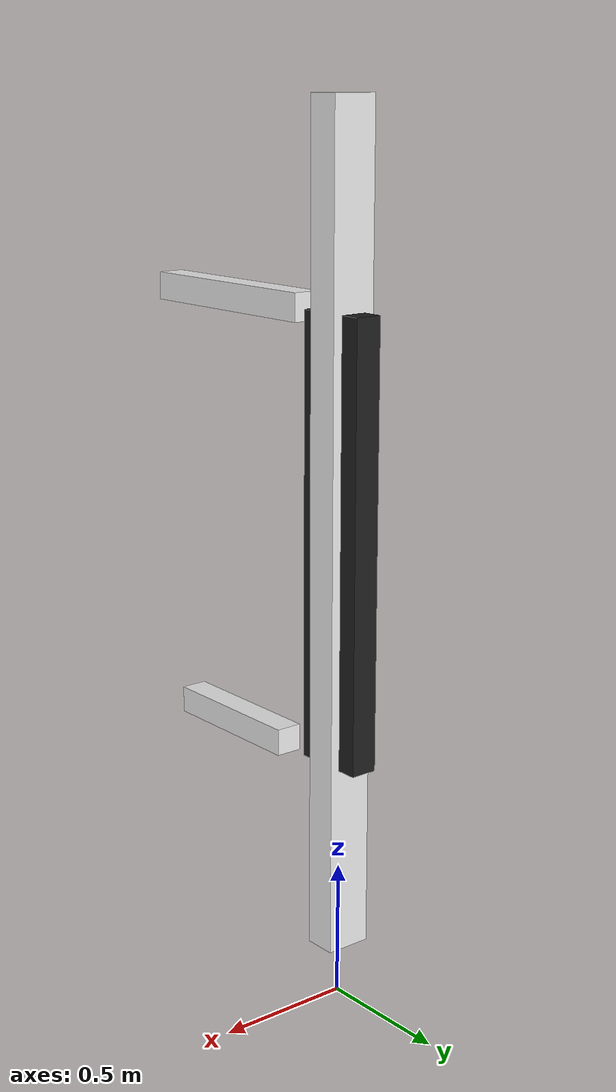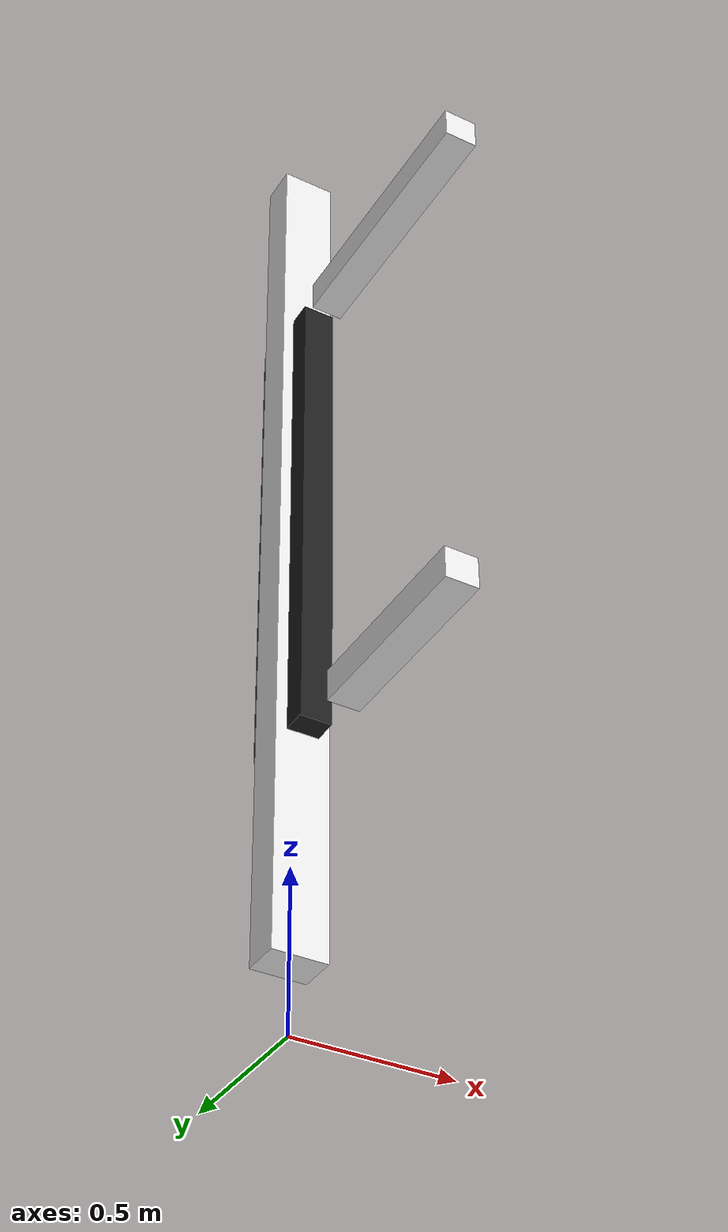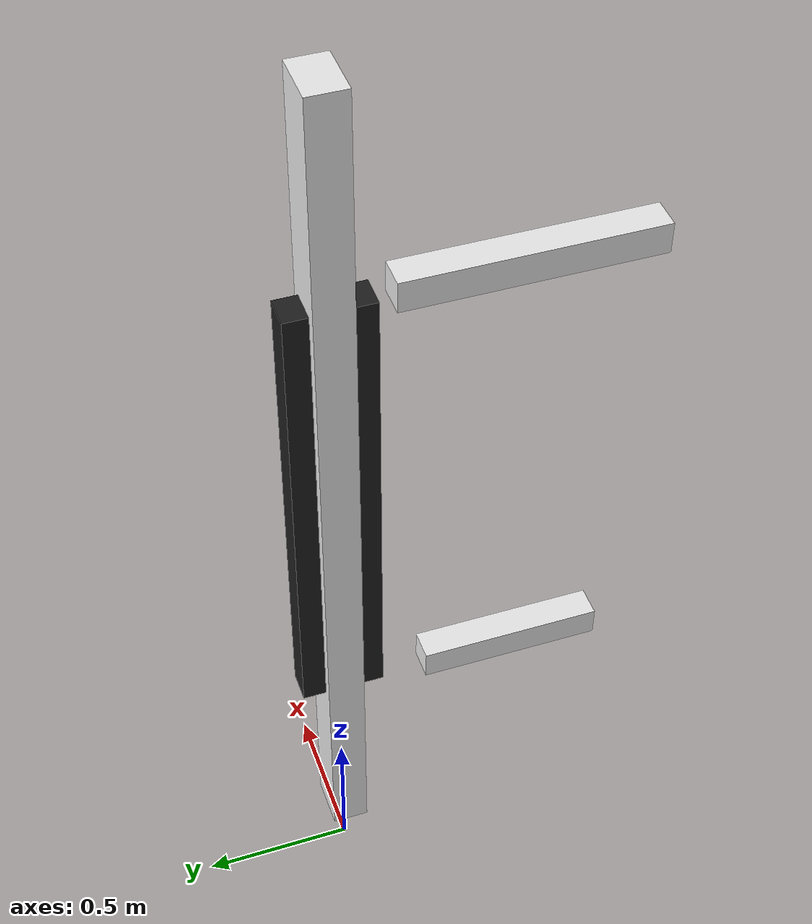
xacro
<?xml version="1.0"?>

<robot name="moving_obs" xmlns:xacro="http://www.ros.org/wiki/xacro">

  <xacro:property name="PI" value="3.1415926535897931"/>
  <xacro:property name="DEG_TO_RAD" value="${PI/180.0}" />

  <xacro:property name="chassisHeight" value="3"/>
  <xacro:property name="chassisLength" value="0.17"/>
  <xacro:property name="chassisWidth" value="0.12"/>
  <xacro:property name="chassisMass" value="173.8"/>

  <xacro:property name="casterRadius" value="0.036"/>
  <xacro:property name="casterMass" value="10"/>

  <xacro:property name="wheelWidth" value="0.026"/>
  <xacro:property name="wheelRadius" value="0.1"/>
  <xacro:property name="wheelPos" value="0.2"/>
  <xacro:property name="wheelMass" value="4.5"/>

  <xacro:include filename="$(find simulation_env)/urdf/minicar_description/minicar.gazebo" />
  <xacro:include filename="$(find simulation_env)/urdf/minicar_description/materials.xacro" />
  <xacro:include filename="$(find simulation_env)/urdf/minicar_description/macros_2.xacro" />

  <link name="base_footprint" />

<!--chassis-->
  <joint name="base_joint" type="fixed">
    <parent link="base_footprint"/>
    <child link="base_link"/>
		<origin rpy="0 0 0" xyz="0 0 ${2*wheelRadius+chassisHeight/2}"/>
  </joint>

  <link name="base_link">
    <collision>
      <origin xyz="0 0 0" rpy="0 0 0"/>
      <geometry>
	<box size="${chassisLength} ${chassisWidth} ${chassisHeight}"/>
      </geometry>
    </collision>

    <visual>
      <origin xyz="0 0 0" rpy="0 0 0"/>
      <geometry>
	<box size="${chassisLength} ${chassisWidth} ${chassisHeight}"/>
      </geometry>
      <material name="white"/>
    </visual>

    <inertial>
      <origin xyz="0 0 0" rpy="0 0 0"/>
      <mass value="${chassisMass}"/>
      <box_inertia m="${chassisMass}" x="${chassisLength}" y="${chassisWidth}" z="${chassisHeight}"/>
    </inertial>
  </link>

<!--wheels from macros.xacro-->
  <wheel lr="left" tY="1"/>
  <wheel lr="right" tY="-1"/>

  <joint name="wheel_joint" type="fixed">
    <parent link="right_wheel"/>
    <child link="wheel_joint"/>
     <origin rpy="0 0 0" xyz="0 0.8 -0.5"/>
  </joint>

  <link name="wheel_joint">
    <collision>
      <origin xyz="0 0 0" rpy="0 0 0"/>
      <geometry>
	<box size="0.1 0.1 0.8"/>
      </geometry>
    </collision>

    <visual>
      <origin xyz="0 0 0" rpy="0 0 0"/>
      <geometry>
	<box size="0.1 0.1 0.6"/>
      </geometry>
      <material name="white"/>
    </visual>

    <inertial>
      <origin xyz="0 0 0" rpy="0 0 0"/>
      <mass value="0.1"/>
      <box_inertia m="0.1" x="0.1" y="0.1" z="0.8"/>
    </inertial>
  </link>

  <joint name="wheel_joint_w" type="fixed">
    <parent link="right_wheel"/>
    <child link="wheel_joint_w"/>
     <origin rpy="0 0 0" xyz="0 -0.8 -0.5"/>
  </joint>

  <link name="wheel_joint_w">
    <collision>
      <origin xyz="0 0 0" rpy="0 0 0"/>
      <geometry>
	<box size="0.1 0.1 0.6"/>
      </geometry>
    </collision>

    <visual>
      <origin xyz="0 0 0" rpy="0 0 0"/>
      <geometry>
	<box size="0.1 0.1 0.8"/>
      </geometry>
      <material name="white"/>
    </visual>

    <inertial>
      <origin xyz="0 0 0" rpy="0 0 0"/>
      <mass value="0.1"/>
      <box_inertia m="0.1" x="0.1" y="0.1" z="0.8"/>
    </inertial>
  </link>

</robot>

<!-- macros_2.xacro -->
<robot>
     <macro name="cylinder_inertia" params="m r h">
        <inertia  ixx="${m*(3*r*r+h*h)/12}" ixy = "0" ixz = "0"
                  iyy="${m*(3*r*r+h*h)/12}" iyz = "0"
                  izz="${m*r*r/2}" />
      </macro>

      <macro name="box_inertia" params="m x y z">
        <inertia  ixx="${m*(y*y+z*z)/12}" ixy = "0" ixz = "0"
                  iyy="${m*(x*x+z*z)/12}" iyz = "0"
                  izz="${m*(x*x+z*z)/12}" />
      </macro>

      <macro name="sphere_inertia" params="m r">
        <inertia  ixx="${2*m*r*r/5}" ixy = "0" ixz = "0"
                  iyy="${2*m*r*r/5}" iyz = "0"
                  izz="${2*m*r*r/5}" />
      </macro>

     <macro name="wheel" params="lr tY">

       <link name="${lr}_wheel">
        <collision>
          <origin xyz="0 0 0" rpy="0 0 0" />
          <geometry>
           <box size="0.1 1.6 0.1"/>
          </geometry>
        </collision>

        <visual>
          <origin xyz="0 0 0" rpy="0 0 0" />
          <geometry>
           <box size="0.1 1.6 0.1"/>
          </geometry>
          <material name="black"/>
        </visual>

        <inertial>
          <origin xyz="0 0 0" rpy="0 0 0" />
          <mass value="${wheelMass}"/>
          <box_inertia m="1" x="0.1" y="1.6" z="0.1"/>
        </inertial>
       </link>

        <gazebo reference="${lr}_wheel">
          <mu1 value="1.0"/>
          <mu2 value="1.0"/>
          <kp  value="100000000.0" />
          <kd  value="1.0" />
          <fdir1 value="1 0 0"/>
          <material>Gazebo/Black</material>
        </gazebo>

       <joint name="${lr}_wheel_hinge" type="continuous">
          <parent link="base_link"/>
          <child link="${lr}_wheel"/>
          <origin xyz="0 ${tY*wheelWidth+tY*chassisWidth/2} 0" rpy="${-PI/2} 0 0" />
          <axis xyz="0 0 1" rpy="0 0 0" />
          <limit effort="100" velocity="100"/>
          <joint_properties damping="0.0" friction="0.0"/>
        </joint>

      <transmission name="${lr}_trans">
        <type>transmission_interface/SimpleTransmission</type>
        <joint name="${lr}_wheel_hinge">
					<hardwareInterface>EffortJointInterface</hardwareInterface>
				</joint>
        <actuator name="${lr}Motor">
          <hardwareInterface>EffortJointInterface</hardwareInterface>
          <mechanicalReduction>10</mechanicalReduction>
        </actuator>
      </transmission>

     </macro>
</robot>
